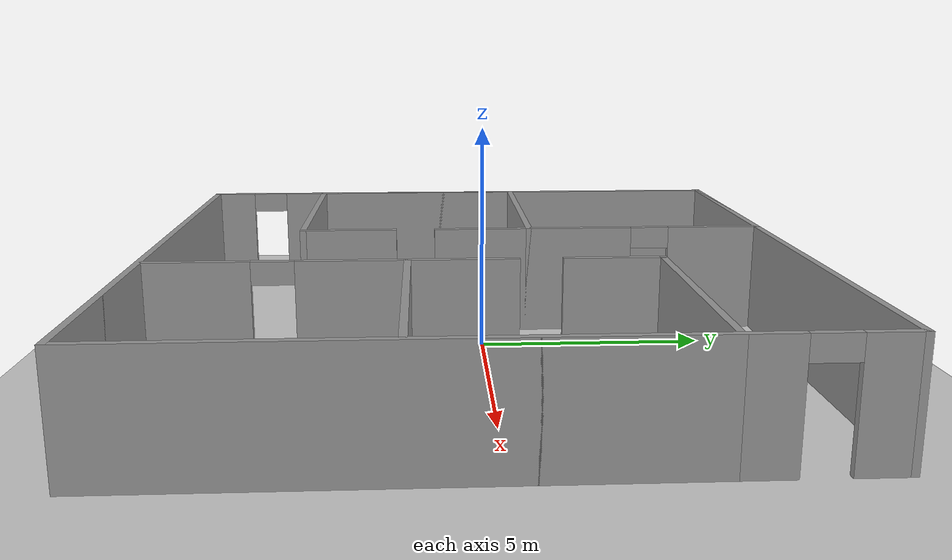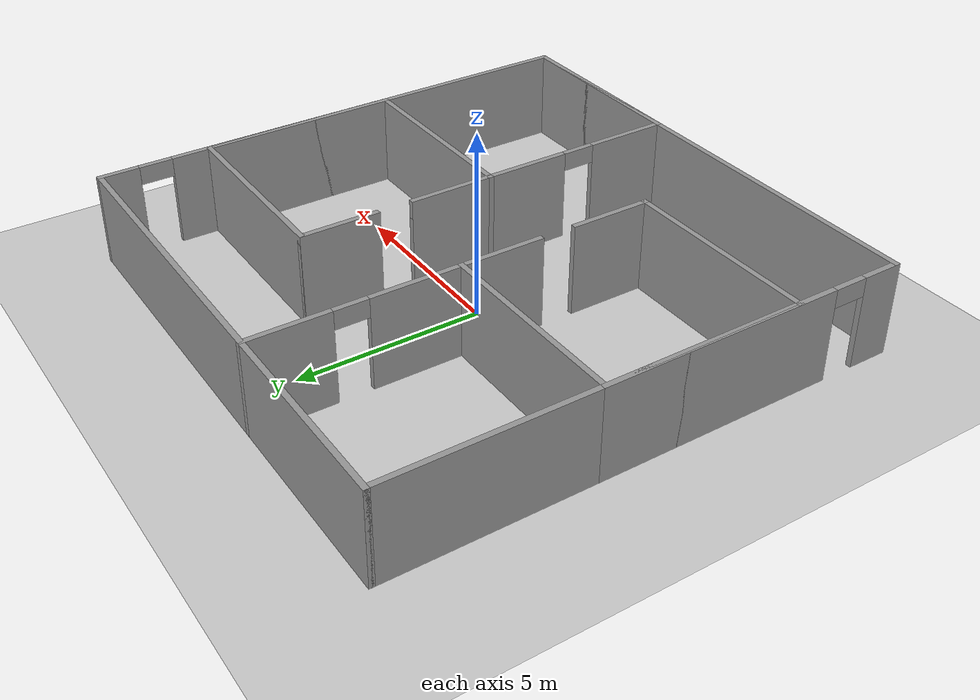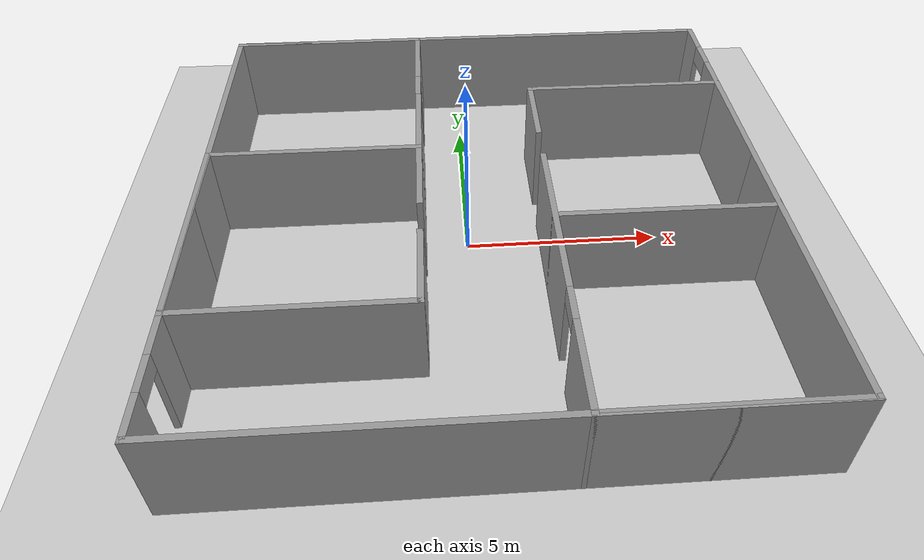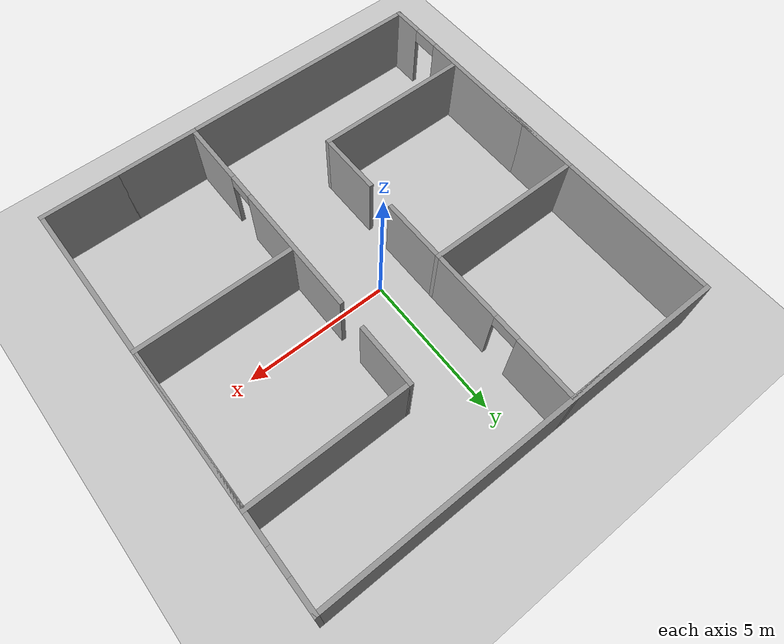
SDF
<sdf version="1.7">
 <world name="default">
  <light name="sun" type="directional">
   <pose>0 0 10 0 -0 0</pose>
   <diffuse>0.8 0.8 0.8 1</diffuse>
   <specular>0.2 0.2 0.2 1</specular>
   <attenuation>
    <range>1000</range>
    <constant>0.9</constant>
    <linear>0.01</linear>
    <quadratic>0.001</quadratic>
   </attenuation>
   <direction>-0.5 0.1 -0.9</direction>
   <spot><inner_angle>0</inner_angle><outer_angle>0</outer_angle><falloff>0</falloff></spot>
  </light>
  <model name="ground_plane">
   <static>1</static>
   <link name="link">
    <collision name="collision">
     <geometry><plane><normal>0 0 1</normal><size>100 100</size></plane></geometry>
     <surface><friction><ode><mu>100</mu><mu2>50</mu2></ode></friction></surface>
    </collision>
    <visual name="visual">
     <cast_shadows>0</cast_shadows>
     <geometry><plane><normal>0 0 1</normal><size>100 100</size></plane></geometry>
     <material>
      <script><uri>file://media/materials/scripts/gazebo.material</uri><name>Gazebo/Grey</name></script>
     </material>
    </visual>
   </link>
  </model>
  <gravity>0 0 -9.8</gravity>
  <magnetic_field>6e-06 2.3e-05 -4.2e-05</magnetic_field>
  <atmosphere type="adiabatic"/>
  <physics type="ode">
   <max_step_size>0.001</max_step_size>
   <real_time_factor>1</real_time_factor>
   <real_time_update_rate>1000</real_time_update_rate>
  </physics>
  <scene><ambient>0.4 0.4 0.4 1</ambient><background>0.7 0.7 0.7 1</background><shadows>1</shadows></scene>
  <audio><device>default</device></audio>
  <spherical_coordinates>
   <surface_model>EARTH_WGS84</surface_model>
   <latitude_deg>0</latitude_deg>
   <longitude_deg>0</longitude_deg>
   <elevation>0</elevation>
   <heading_deg>0</heading_deg>
  </spherical_coordinates>
  <model name="mapC">
   <pose>0.396302 -0.244047 0 0 -0 0</pose>
   <link name="Wall_0">
    <collision name="Wall_0_Collision">
     <geometry><box><size>14 0.15 2.5</size></box></geometry>
     <pose>0 0 1.25 0 -0 0</pose>
    </collision>
    <visual name="Wall_0_Visual">
     <pose>0 0 1.25 0 -0 0</pose>
     <geometry><box><size>14 0.15 2.5</size></box></geometry>
     <material>
      <script><uri>file://media/materials/scripts/gazebo.material</uri><name>Gazebo/Grey</name></script>
      <ambient>1 1 1 1</ambient>
     </material>
     <meta><layer>0</layer></meta>
    </visual>
    <pose>0 -6.925 0 0 -0 0</pose>
   </link>
   <link name="Wall_1">
    <pose>6.925 0 0 0 -0 1.5708</pose>
    <visual name="Wall_1_Visual_0">
     <pose>-1.00314 0 1.25 0 -0 0</pose>
     <geometry><box><size>11.9937 0.15 2.5</size></box></geometry>
     <material>
      <script><uri>file://media/materials/scripts/gazebo.material</uri><name>Gazebo/Grey</name></script>
      <ambient>1 1 1 1</ambient>
     </material>
     <meta><layer>0</layer></meta>
    </visual>
    <collision name="Wall_1_Collision_0">
     <geometry><box><size>11.9937 0.15 2.5</size></box></geometry>
     <pose>-1.00314 0 1.25 0 -0 0</pose>
    </collision>
    <visual name="Wall_1_Visual_1">
     <pose>6.44686 0 1.25 0 -0 0</pose>
     <geometry><box><size>1.10629 0.15 2.5</size></box></geometry>
     <material>
      <script><uri>file://media/materials/scripts/gazebo.material</uri><name>Gazebo/Grey</name></script>
      <ambient>1 1 1 1</ambient>
     </material>
     <meta><layer>0</layer></meta>
    </visual>
    <collision name="Wall_1_Collision_1">
     <geometry><box><size>1.10629 0.15 2.5</size></box></geometry>
     <pose>6.44686 0 1.25 0 -0 0</pose>
    </collision>
    <visual name="Wall_1_Visual_2">
     <pose>5.44371 0 2.25 0 -0 0</pose>
     <geometry><box><size>0.9 0.15 0.5</size></box></geometry>
     <material>
      <script><uri>file://media/materials/scripts/gazebo.material</uri><name>Gazebo/Grey</name></script>
      <ambient>1 1 1 1</ambient>
     </material>
     <meta><layer>0</layer></meta>
    </visual>
    <collision name="Wall_1_Collision_2">
     <geometry><box><size>0.9 0.15 0.5</size></box></geometry>
     <pose>5.44371 0 2.25 0 -0 0</pose>
    </collision>
   </link>
   <link name="Wall_11">
    <collision name="Wall_11_Collision">
     <geometry><box><size>5.5 0.15 2.5</size></box></geometry>
     <pose>0 0 1.25 0 -0 0</pose>
    </collision>
    <visual name="Wall_11_Visual">
     <pose>0 0 1.25 0 -0 0</pose>
     <geometry><box><size>5.5 0.15 2.5</size></box></geometry>
     <material>
      <script><uri>file://media/materials/scripts/gazebo.material</uri><name>Gazebo/Grey</name></script>
      <ambient>1 1 1 1</ambient>
     </material>
     <meta><layer>0</layer></meta>
    </visual>
    <pose>4.25 -6.925 0 0 -0 3.14159</pose>
   </link>
   <link name="Wall_12">
    <pose>1.575 -1.5 0 0 -0 1.5708</pose>
    <visual name="Wall_12_Visual_0">
     <pose>-4.32245 0 1.25 0 -0 0</pose>
     <geometry><box><size>2.3551 0.15 2.5</size></box></geometry>
     <material>
      <script><uri>file://media/materials/scripts/gazebo.material</uri><name>Gazebo/Grey</name></script>
      <ambient>1 1 1 1</ambient>
     </material>
     <meta><layer>0</layer></meta>
    </visual>
    <collision name="Wall_12_Collision_0">
     <geometry><box><size>2.3551 0.15 2.5</size></box></geometry>
     <pose>-4.32245 0 1.25 0 -0 0</pose>
    </collision>
    <visual name="Wall_12_Visual_1">
     <pose>0.084817 0 1.25 0 -0 0</pose>
     <geometry><box><size>4.65944 0.15 2.5</size></box></geometry>
     <material>
      <script><uri>file://media/materials/scripts/gazebo.material</uri><name>Gazebo/Grey</name></script>
      <ambient>1 1 1 1</ambient>
     </material>
     <meta><layer>0</layer></meta>
    </visual>
    <collision name="Wall_12_Collision_1">
     <geometry><box><size>4.65944 0.15 2.5</size></box></geometry>
     <pose>0.084817 0 1.25 0 -0 0</pose>
    </collision>
    <visual name="Wall_12_Visual_2">
     <pose>4.40727 0 1.25 0 -0 0</pose>
     <geometry><box><size>2.18546 0.15 2.5</size></box></geometry>
     <material>
      <script><uri>file://media/materials/scripts/gazebo.material</uri><name>Gazebo/Grey</name></script>
      <ambient>1 1 1 1</ambient>
     </material>
     <meta><layer>0</layer></meta>
    </visual>
    <collision name="Wall_12_Collision_2">
     <geometry><box><size>2.18546 0.15 2.5</size></box></geometry>
     <pose>4.40727 0 1.25 0 -0 0</pose>
    </collision>
    <visual name="Wall_12_Visual_3">
     <pose>-2.6949 0 2.25 0 -0 0</pose>
     <geometry><box><size>0.9 0.15 0.5</size></box></geometry>
     <material>
      <script><uri>file://media/materials/scripts/gazebo.material</uri><name>Gazebo/Grey</name></script>
      <ambient>1 1 1 1</ambient>
     </material>
     <meta><layer>0</layer></meta>
    </visual>
    <collision name="Wall_12_Collision_3">
     <geometry><box><size>0.9 0.15 0.5</size></box></geometry>
     <pose>-2.6949 0 2.25 0 -0 0</pose>
    </collision>
    <visual name="Wall_12_Visual_4">
     <pose>2.41454 0 2.25 0 -0 0</pose>
     <geometry><box><size>0 0.15 0.5</size></box></geometry>
     <material>
      <script><uri>file://media/materials/scripts/gazebo.material</uri><name>Gazebo/Grey</name></script>
      <ambient>1 1 1 1</ambient>
     </material>
     <meta><layer>0</layer></meta>
    </visual>
    <collision name="Wall_12_Collision_4">
     <geometry><box><size>0 0.15 0.5</size></box></geometry>
     <pose>2.41454 0 2.25 0 -0 0</pose>
    </collision>
   </link>
   <link name="Wall_13">
    <collision name="Wall_13_Collision">
     <geometry><box><size>5.5 0.15 2.5</size></box></geometry>
     <pose>0 0 1.25 0 -0 0</pose>
    </collision>
    <visual name="Wall_13_Visual">
     <pose>0 0 1.25 0 -0 0</pose>
     <geometry><box><size>5.5 0.15 2.5</size></box></geometry>
     <material>
      <script><uri>file://media/materials/scripts/gazebo.material</uri><name>Gazebo/Grey</name></script>
      <ambient>1 1 1 1</ambient>
     </material>
     <meta><layer>0</layer></meta>
    </visual>
    <pose>4.25 3.925 0 0 -0 0</pose>
   </link>
   <link name="Wall_14">
    <collision name="Wall_14_Collision">
     <geometry><box><size>5.5 0.15 2.5</size></box></geometry>
     <pose>0 0 1.25 0 -0 0</pose>
    </collision>
    <visual name="Wall_14_Visual">
     <pose>0 0 1.25 0 -0 0</pose>
     <geometry><box><size>5.5 0.15 2.5</size></box></geometry>
     <material>
      <script><uri>file://media/materials/scripts/gazebo.material</uri><name>Gazebo/Grey</name></script>
      <ambient>1 1 1 1</ambient>
     </material>
     <meta><layer>0</layer></meta>
    </visual>
    <pose>6.925 1.25 0 0 -0 -1.5708</pose>
   </link>
   <link name="Wall_15">
    <collision name="Wall_15_Collision">
     <geometry><box><size>5.5 0.15 2.5</size></box></geometry>
     <pose>0 0 1.25 0 -0 0</pose>
    </collision>
    <visual name="Wall_15_Visual">
     <pose>0 0 1.25 0 -0 0</pose>
     <geometry><box><size>5.5 0.15 2.5</size></box></geometry>
     <material>
      <script><uri>file://media/materials/scripts/gazebo.material</uri><name>Gazebo/Grey</name></script>
      <ambient>1 1 1 1</ambient>
     </material>
     <meta><layer>0</layer></meta>
    </visual>
    <pose>4.25 -1.425 0 0 -0 3.14159</pose>
   </link>
   <link name="Wall_2">
    <collision name="Wall_2_Collision">
     <geometry><box><size>14 0.15 2.5</size></box></geometry>
     <pose>0 0 1.25 0 -0 0</pose>
    </collision>
    <visual name="Wall_2_Visual">
     <pose>0 0 1.25 0 -0 0</pose>
     <geometry><box><size>14 0.15 2.5</size></box></geometry>
     <material>
      <script><uri>file://media/materials/scripts/gazebo.material</uri><name>Gazebo/Grey</name></script>
      <ambient>1 1 1 1</ambient>
     </material>
     <meta><layer>0</layer></meta>
    </visual>
    <pose>0 6.925 0 0 -0 3.14159</pose>
   </link>
   <link name="Wall_3">
    <pose>-6.925 0 0 0 -0 -1.5708</pose>
    <visual name="Wall_3_Visual_0">
     <pose>-1.0018 0 1.25 0 -0 0</pose>
     <geometry><box><size>11.9964 0.15 2.5</size></box></geometry>
     <material>
      <script><uri>file://media/materials/scripts/gazebo.material</uri><name>Gazebo/Grey</name></script>
      <ambient>1 1 1 1</ambient>
     </material>
     <meta><layer>0</layer></meta>
    </visual>
    <collision name="Wall_3_Collision_0">
     <geometry><box><size>11.9964 0.15 2.5</size></box></geometry>
     <pose>-1.0018 0 1.25 0 -0 0</pose>
    </collision>
    <visual name="Wall_3_Visual_1">
     <pose>6.4482 0 1.25 0 -0 0</pose>
     <geometry><box><size>1.10359 0.15 2.5</size></box></geometry>
     <material>
      <script><uri>file://media/materials/scripts/gazebo.material</uri><name>Gazebo/Grey</name></script>
      <ambient>1 1 1 1</ambient>
     </material>
     <meta><layer>0</layer></meta>
    </visual>
    <collision name="Wall_3_Collision_1">
     <geometry><box><size>1.10359 0.15 2.5</size></box></geometry>
     <pose>6.4482 0 1.25 0 -0 0</pose>
    </collision>
    <visual name="Wall_3_Visual_2">
     <pose>5.44641 0 2.25 0 -0 0</pose>
     <geometry><box><size>0.9 0.15 0.5</size></box></geometry>
     <material>
      <script><uri>file://media/materials/scripts/gazebo.material</uri><name>Gazebo/Grey</name></script>
      <ambient>1 1 1 1</ambient>
     </material>
     <meta><layer>0</layer></meta>
    </visual>
    <collision name="Wall_3_Collision_2">
     <geometry><box><size>0.9 0.15 0.5</size></box></geometry>
     <pose>5.44641 0 2.25 0 -0 0</pose>
    </collision>
   </link>
   <link name="Wall_5">
    <collision name="Wall_5_Collision">
     <geometry><box><size>5.5 0.15 2.5</size></box></geometry>
     <pose>0 0 1.25 0 -0 0</pose>
    </collision>
    <visual name="Wall_5_Visual">
     <pose>0 0 1.25 0 -0 0</pose>
     <geometry><box><size>5.5 0.15 2.5</size></box></geometry>
     <material>
      <script><uri>file://media/materials/scripts/gazebo.material</uri><name>Gazebo/Grey</name></script>
      <ambient>1 1 1 1</ambient>
     </material>
     <meta><layer>0</layer></meta>
    </visual>
    <pose>-4.25 6.925 0 0 -0 0</pose>
   </link>
   <link name="Wall_6">
    <pose>-1.575 1.5 0 0 -0 -1.5708</pose>
    <visual name="Wall_6_Visual_0">
     <pose>-4.3856 0 1.25 0 -0 0</pose>
     <geometry><box><size>2.22881 0.15 2.5</size></box></geometry>
     <material>
      <script><uri>file://media/materials/scripts/gazebo.material</uri><name>Gazebo/Grey</name></script>
      <ambient>1 1 1 1</ambient>
     </material>
     <meta><layer>0</layer></meta>
    </visual>
    <collision name="Wall_6_Collision_0">
     <geometry><box><size>2.22881 0.15 2.5</size></box></geometry>
     <pose>-4.3856 0 1.25 0 -0 0</pose>
    </collision>
    <visual name="Wall_6_Visual_1">
     <pose>-0.02239 0 1.25 0 -0 0</pose>
     <geometry><box><size>4.69761 0.15 2.5</size></box></geometry>
     <material>
      <script><uri>file://media/materials/scripts/gazebo.material</uri><name>Gazebo/Grey</name></script>
      <ambient>1 1 1 1</ambient>
     </material>
     <meta><layer>0</layer></meta>
    </visual>
    <collision name="Wall_6_Collision_1">
     <geometry><box><size>4.69761 0.15 2.5</size></box></geometry>
     <pose>-0.02239 0 1.25 0 -0 0</pose>
    </collision>
    <visual name="Wall_6_Visual_2">
     <pose>4.36321 0 1.25 0 -0 0</pose>
     <geometry><box><size>2.27359 0.15 2.5</size></box></geometry>
     <material>
      <script><uri>file://media/materials/scripts/gazebo.material</uri><name>Gazebo/Grey</name></script>
      <ambient>1 1 1 1</ambient>
     </material>
     <meta><layer>0</layer></meta>
    </visual>
    <collision name="Wall_6_Collision_2">
     <geometry><box><size>2.27359 0.15 2.5</size></box></geometry>
     <pose>4.36321 0 1.25 0 -0 0</pose>
    </collision>
    <visual name="Wall_6_Visual_3">
     <pose>-2.82119 0 2.25 0 -0 0</pose>
     <geometry><box><size>0.9 0.15 0.5</size></box></geometry>
     <material>
      <script><uri>file://media/materials/scripts/gazebo.material</uri><name>Gazebo/Grey</name></script>
      <ambient>1 1 1 1</ambient>
     </material>
     <meta><layer>0</layer></meta>
    </visual>
    <collision name="Wall_6_Collision_3">
     <geometry><box><size>0.9 0.15 0.5</size></box></geometry>
     <pose>-2.82119 0 2.25 0 -0 0</pose>
    </collision>
    <visual name="Wall_6_Visual_4">
     <pose>2.32641 0 2.25 0 -0 0</pose>
     <geometry><box><size>0 0.15 0.5</size></box></geometry>
     <material>
      <script><uri>file://media/materials/scripts/gazebo.material</uri><name>Gazebo/Grey</name></script>
      <ambient>1 1 1 1</ambient>
     </material>
     <meta><layer>0</layer></meta>
    </visual>
    <collision name="Wall_6_Collision_4">
     <geometry><box><size>0 0.15 0.5</size></box></geometry>
     <pose>2.32641 0 2.25 0 -0 0</pose>
    </collision>
   </link>
   <link name="Wall_7">
    <collision name="Wall_7_Collision">
     <geometry><box><size>5.5 0.15 2.5</size></box></geometry>
     <pose>0 0 1.25 0 -0 0</pose>
    </collision>
    <visual name="Wall_7_Visual">
     <pose>0 0 1.25 0 -0 0</pose>
     <geometry><box><size>5.5 0.15 2.5</size></box></geometry>
     <material>
      <script><uri>file://media/materials/scripts/gazebo.material</uri><name>Gazebo/Grey</name></script>
      <ambient>1 1 1 1</ambient>
     </material>
     <meta><layer>0</layer></meta>
    </visual>
    <pose>-4.25 -3.925 0 0 -0 3.14159</pose>
   </link>
   <link name="Wall_8">
    <collision name="Wall_8_Collision">
     <geometry><box><size>5.5 0.15 2.5</size></box></geometry>
     <pose>0 0 1.25 0 -0 0</pose>
    </collision>
    <visual name="Wall_8_Visual">
     <pose>0 0 1.25 0 -0 0</pose>
     <geometry><box><size>5.5 0.15 2.5</size></box></geometry>
     <material>
      <script><uri>file://media/materials/scripts/gazebo.material</uri><name>Gazebo/Grey</name></script>
      <ambient>1 1 1 1</ambient>
     </material>
     <meta><layer>0</layer></meta>
    </visual>
    <pose>-6.925 -1.25 0 0 -0 1.5708</pose>
   </link>
   <link name="Wall_9">
    <collision name="Wall_9_Collision">
     <geometry><box><size>5.5 0.15 2.5</size></box></geometry>
     <pose>0 0 1.25 0 -0 0</pose>
    </collision>
    <visual name="Wall_9_Visual">
     <pose>0 0 1.25 0 -0 0</pose>
     <geometry><box><size>5.5 0.15 2.5</size></box></geometry>
     <material>
      <script><uri>file://media/materials/scripts/gazebo.material</uri><name>Gazebo/Grey</name></script>
      <ambient>1 1 1 1</ambient>
     </material>
     <meta><layer>0</layer></meta>
    </visual>
    <pose>-4.25 1.425 0 0 -0 0</pose>
   </link>
   <static>1</static>
  </model>
 </world>
</sdf>
